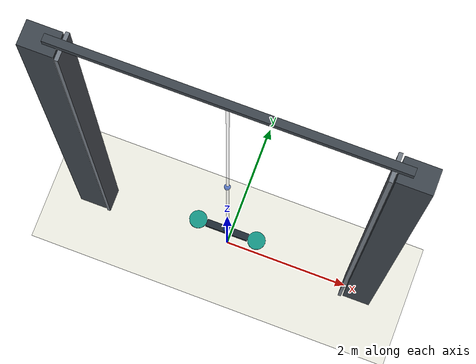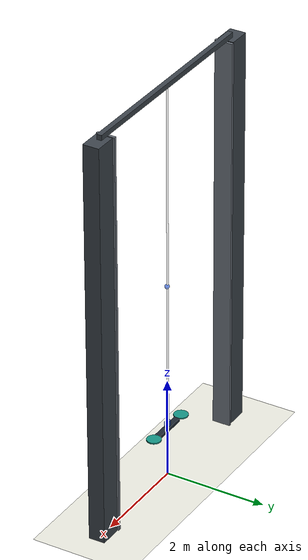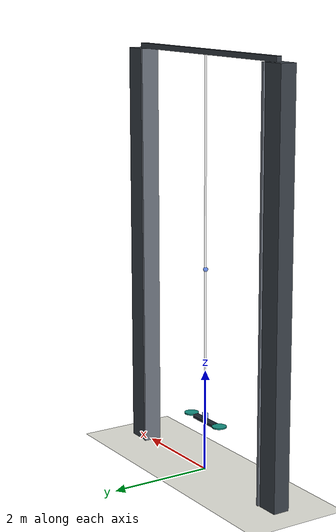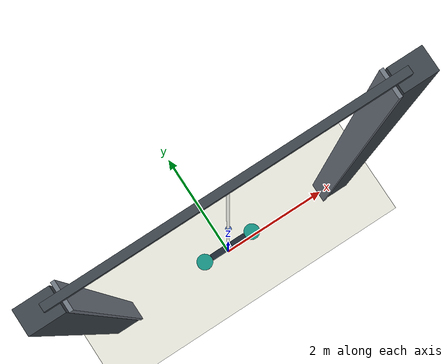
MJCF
<mujoco model="planar_quadrotor_figure8">
  <compiler angle="radian"/>
  <option timestep="0.005" gravity="0 0 -9.81" integrator="RK4"/>

  <visual>
    <global azimuth="90" elevation="-8" offwidth="1280" offheight="960"/>
    <quality shadowsize="2048"/>
    <headlight diffuse="0.8 0.8 0.8" ambient="0.25 0.25 0.25"/>
  </visual>

  <asset>
    <material name="drone_body" rgba="0.12 0.16 0.20 1"/>
    <material name="rotor" rgba="0.08 0.58 0.52 1"/>
    <material name="obstacle" rgba="0.45 0.48 0.52 1"/>
    <material name="wall" rgba="0.24 0.27 0.30 1"/>
    <material name="floor" rgba="0.92 0.92 0.88 1"/>
    <material name="target" rgba="0.10 0.34 0.95 0.65"/>
  </asset>

  <worldbody>
    <light pos="0 -4 8" dir="0 1 -1" directional="true"/>
    <camera name="overview" pos="0 -9.5 4.1" xyaxes="1 0 0 0 0 1"/>
    <geom name="floor" type="plane" pos="0 0 0" size="3 1 0.05" material="floor"/>

    <geom name="left_side_obstacle" type="box" pos="-2.25 0 4" size="0.22 0.16 4" material="wall"/>
    <geom name="right_side_obstacle" type="box" pos="2.25 0 4" size="0.22 0.16 4" material="wall"/>
    <geom name="left_inner_edge" type="box" pos="-1.98 0 4" size="0.025 0.18 4" material="obstacle"/>
    <geom name="right_inner_edge" type="box" pos="1.98 0 4" size="0.025 0.18 4" material="obstacle"/>
    <geom name="top_limit" type="box" pos="0 0 8.05" size="2.2 0.05 0.05" material="wall"/>

    <geom name="street_centerline" type="box" pos="0 0.01 4" size="0.018 0.01 4" rgba="1 1 1 0.45" contype="0" conaffinity="0"/>

    <body name="reference_marker" mocap="true" pos="0 0 4">
      <geom name="target_marker" type="sphere" size="0.045" material="target" contype="0" conaffinity="0"/>
    </body>

    <body name="quadrotor" pos="0 0 1">
      <joint name="x_slide" type="slide" axis="1 0 0" damping="0.08" limited="true" range="-2 2"/>
      <joint name="z_slide" type="slide" axis="0 0 1" damping="0.08" limited="true" range="0.2 7.8"/>
      <joint name="pitch" type="hinge" axis="0 1 0" damping="0.02" limited="true" range="-0.8 0.8"/>

      <geom name="body" type="box" pos="0 0 0" size="0.34 0.055 0.035" mass="0.68" material="drone_body"/>
      <geom name="left_arm" type="capsule" fromto="-0.45 0 0 0.45 0 0" size="0.018" mass="0.08" material="drone_body"/>
      <geom name="left_rotor" type="cylinder" pos="-0.48 0 0.02" size="0.14 0.012" mass="0.12" material="rotor"/>
      <geom name="right_rotor" type="cylinder" pos="0.48 0 0.02" size="0.14 0.012" mass="0.12" material="rotor"/>
      <geom name="nose" type="box" pos="0 0 0.08" size="0.055 0.035 0.08" mass="0.04" material="target"/>
    </body>
  </worldbody>

  <actuator>
    <motor name="x_force" joint="x_slide" gear="1" ctrllimited="true" ctrlrange="-20 20"/>
    <motor name="z_force" joint="z_slide" gear="1" ctrllimited="true" ctrlrange="-5 25"/>
    <motor name="pitch_torque" joint="pitch" gear="1" ctrllimited="true" ctrlrange="-3 3"/>
  </actuator>
</mujoco>
